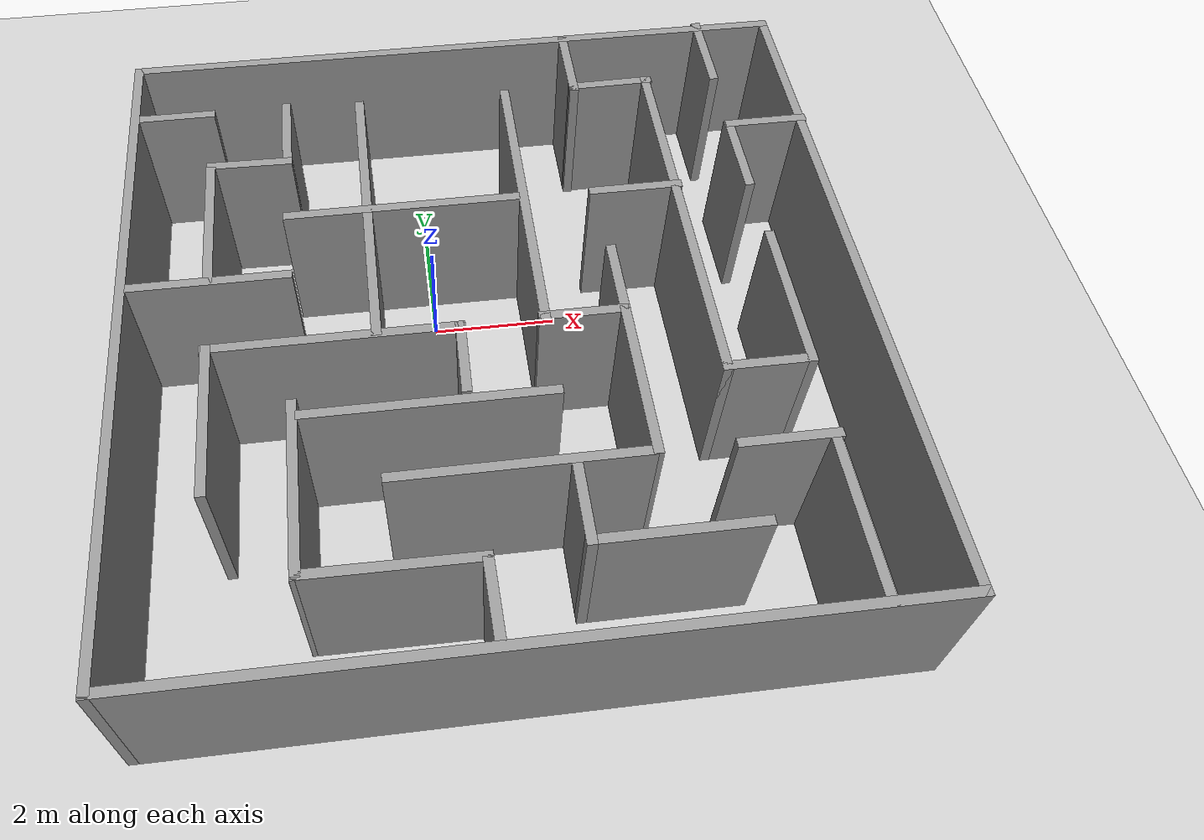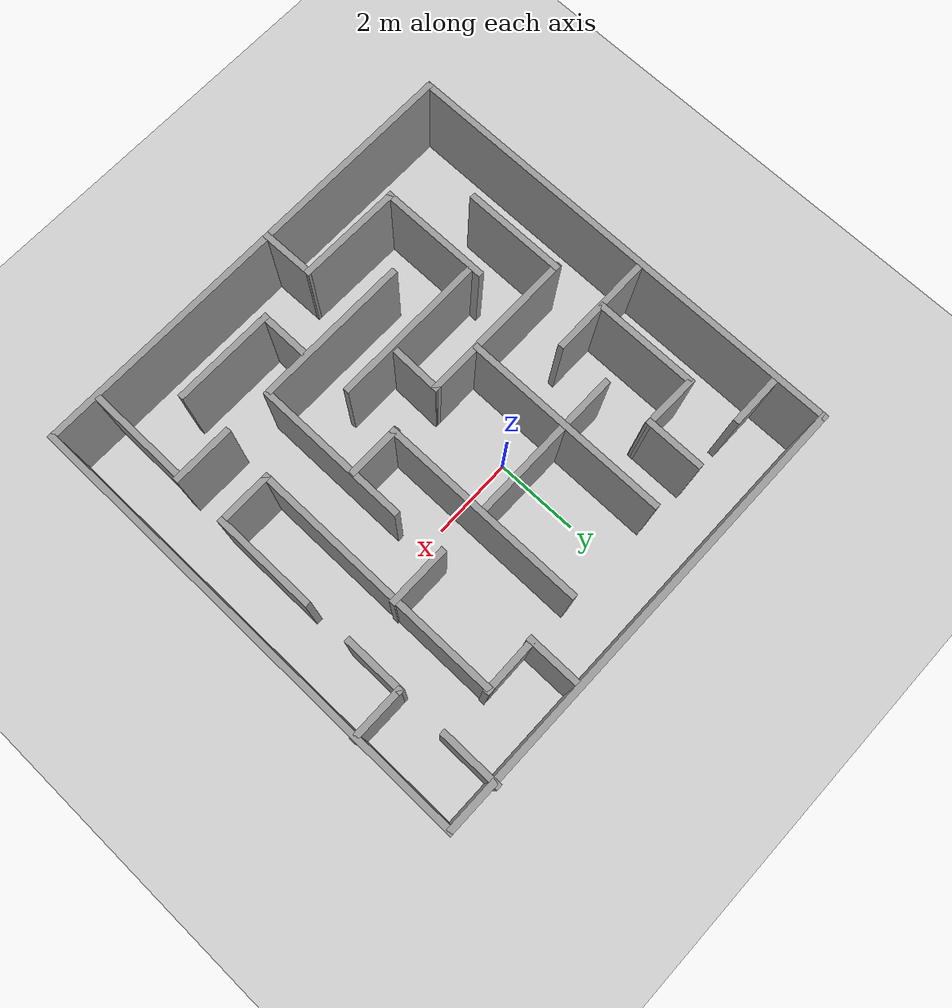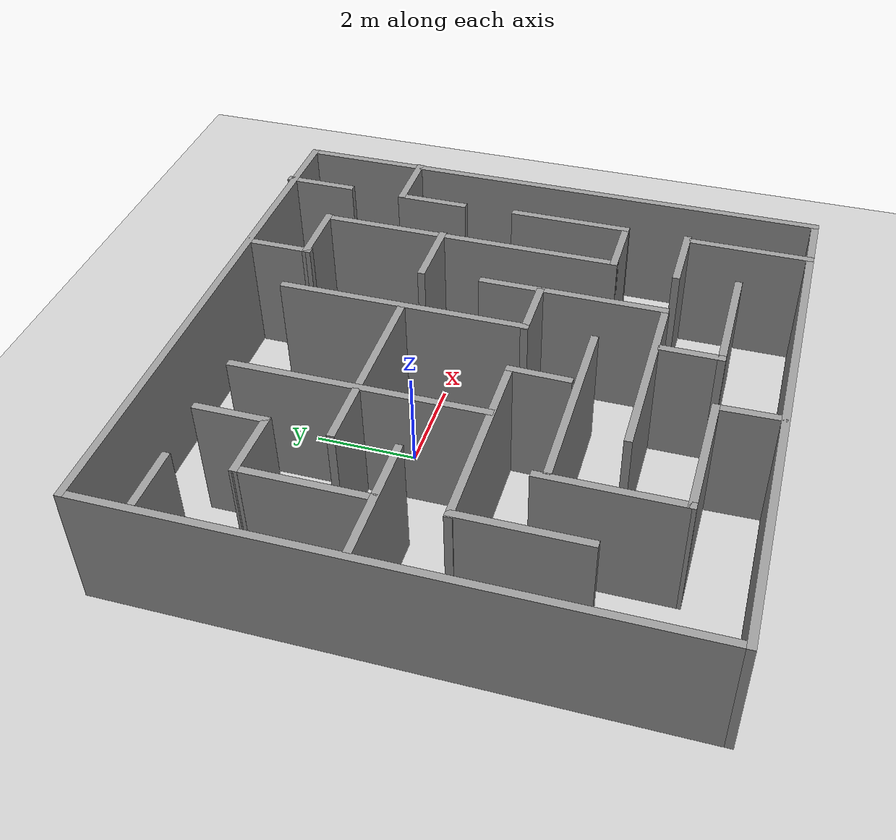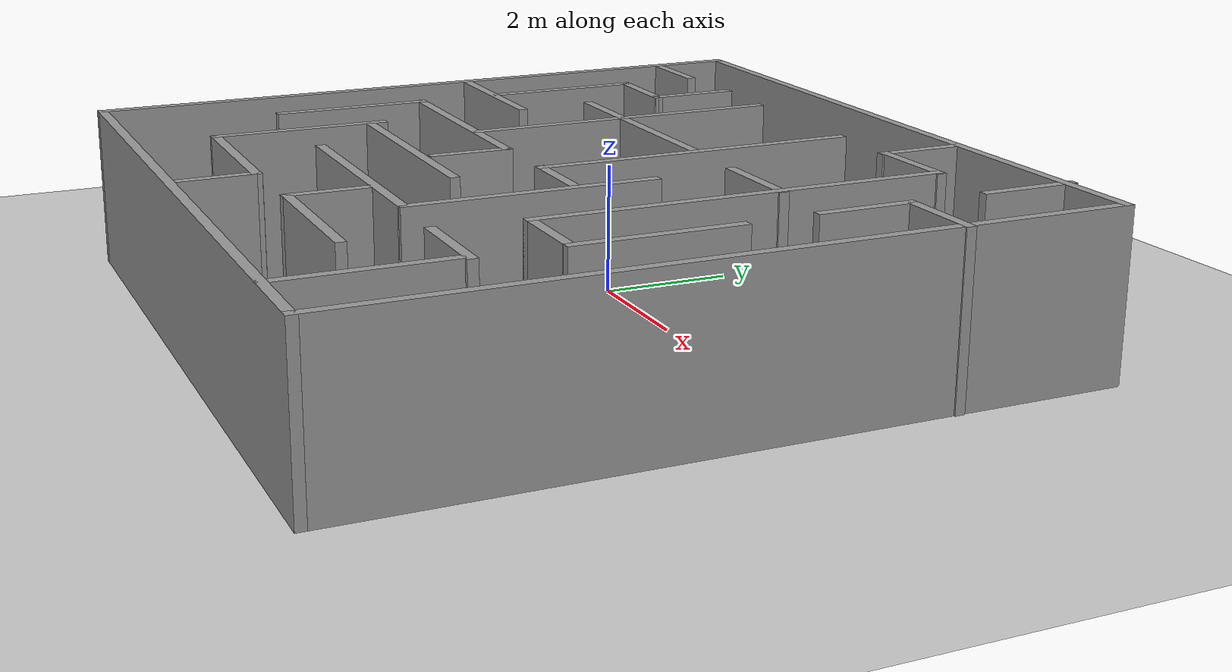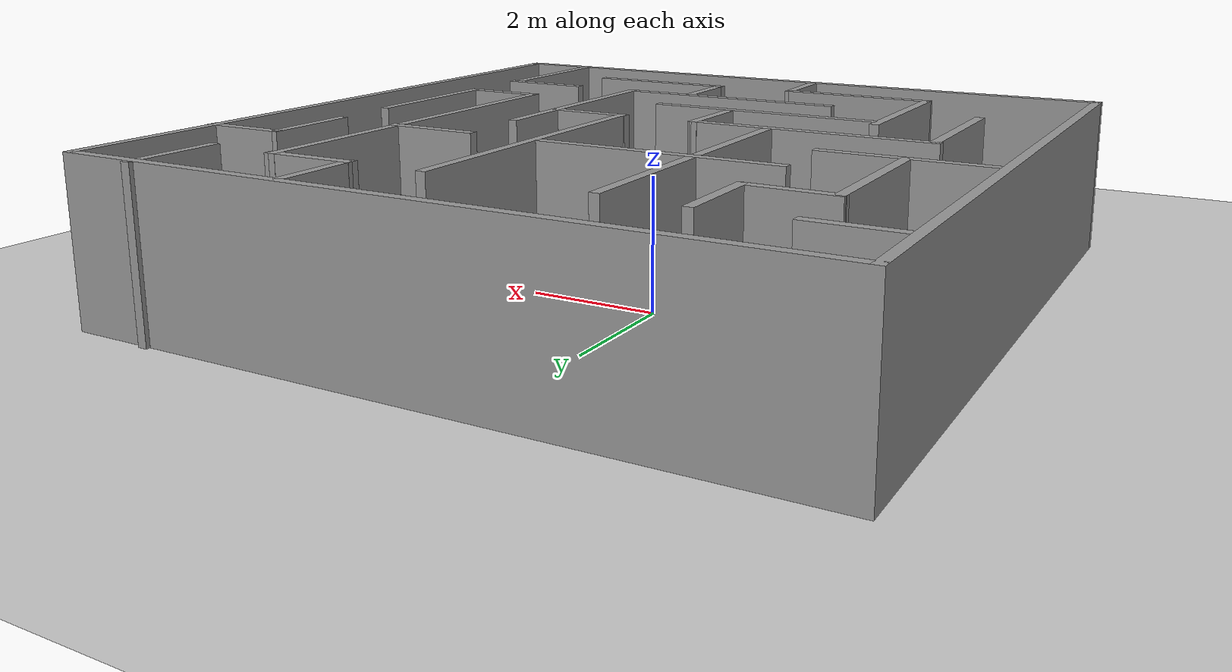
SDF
<sdf version="1.7">
 <world name="default">
  <model name="ground_plane">
   <static>1</static>
   <link name="link">
    <collision name="collision">
     <geometry><plane><normal>0 0 1</normal><size>100 100</size></plane></geometry>
     <surface><friction><ode><mu>100</mu><mu2>50</mu2></ode></friction></surface>
    </collision>
    <visual name="visual">
     <cast_shadows>0</cast_shadows>
     <geometry><plane><normal>0 0 1</normal><size>100 100</size></plane></geometry>
     <material>
      <script><uri>file://media/materials/scripts/gazebo.material</uri><name>Gazebo/Grey</name></script>
     </material>
    </visual>
   </link>
  </model>
  <light name="sun" type="directional">
   <pose>0 0 10 0 -0 0</pose>
   <diffuse>0.8 0.8 0.8 1</diffuse>
   <specular>0.2 0.2 0.2 1</specular>
   <attenuation>
    <range>1000</range>
    <constant>0.9</constant>
    <linear>0.01</linear>
    <quadratic>0.001</quadratic>
   </attenuation>
   <direction>-0.5 0.1 -0.9</direction>
   <spot><inner_angle>0</inner_angle><outer_angle>0</outer_angle><falloff>0</falloff></spot>
  </light>
  <scene><shadows>0</shadows><ambient>0.4 0.4 0.4 1</ambient><background>0.7 0.7 0.7 1</background></scene>
  <physics type="ode">
   <real_time_update_rate>1000</real_time_update_rate>
   <max_step_size>0.001</max_step_size>
   <real_time_factor>1</real_time_factor>
   <ode>
    <solver>
     <type>quick</type>
     <iters>150</iters>
     <precon_iters>0</precon_iters>
     <sor>1.4</sor>
     <use_dynamic_moi_rescaling>1</use_dynamic_moi_rescaling>
    </solver>
    <constraints>
     <cfm>1e-05</cfm>
     <erp>0.2</erp>
     <contact_max_correcting_vel>2000</contact_max_correcting_vel>
     <contact_surface_layer>0.01</contact_surface_layer>
    </constraints>
   </ode>
  </physics>
  <gravity>0 0 -9.8</gravity>
  <magnetic_field>6e-06 2.3e-05 -4.2e-05</magnetic_field>
  <atmosphere type="adiabatic"/>
  <audio><device>default</device></audio>
  <spherical_coordinates>
   <surface_model>EARTH_WGS84</surface_model>
   <latitude_deg>0</latitude_deg>
   <longitude_deg>0</longitude_deg>
   <elevation>0</elevation>
   <heading_deg>0</heading_deg>
  </spherical_coordinates>
  <model name="9by9_maze">
   <pose>0.849129 -1.13853 0 0 -0 0</pose>
   <link name="Wall_0">
    <collision name="Wall_0_Collision">
     <geometry><box><size>11.25 0.15 2.5</size></box></geometry>
     <pose>0 0 1.25 0 -0 0</pose>
    </collision>
    <visual name="Wall_0_Visual">
     <pose>0 0 1.25 0 -0 0</pose>
     <geometry><box><size>11.25 0.15 2.5</size></box></geometry>
     <material>
      <script><uri>file://media/materials/scripts/gazebo.material</uri><name>Gazebo/Grey</name></script>
      <ambient>1 1 1 1</ambient>
     </material>
     <meta><layer>0</layer></meta>
    </visual>
    <pose>-0.011794 5.51766 0 0 -0 0</pose>
   </link>
   <link name="Wall_1">
    <collision name="Wall_1_Collision">
     <geometry><box><size>11.25 0.15 2.5</size></box></geometry>
     <pose>0 0 1.25 0 -0 0</pose>
    </collision>
    <visual name="Wall_1_Visual">
     <pose>0 0 1.25 0 -0 0</pose>
     <geometry><box><size>11.25 0.15 2.5</size></box></geometry>
     <material>
      <script><uri>file://media/materials/scripts/gazebo.material</uri><name>Gazebo/Grey</name></script>
      <ambient>1 1 1 1</ambient>
     </material>
     <meta><layer>0</layer></meta>
    </visual>
    <pose>5.53821 -0.032344 0 0 -0 -1.5708</pose>
   </link>
   <link name="Wall_10">
    <collision name="Wall_10_Collision">
     <geometry><box><size>1.43004 0.15 2.5</size></box></geometry>
     <pose>0 0 1.25 0 -0 0</pose>
    </collision>
    <visual name="Wall_10_Visual">
     <pose>0 0 1.25 0 -0 0</pose>
     <geometry><box><size>1.43004 0.15 2.5</size></box></geometry>
     <material>
      <script><uri>file://media/materials/scripts/gazebo.material</uri><name>Gazebo/Grey</name></script>
      <ambient>1 1 1 1</ambient>
     </material>
     <meta><layer>0</layer></meta>
    </visual>
    <pose>-3.03551 3.68063 0 0 -0 -1.5708</pose>
   </link>
   <link name="Wall_13">
    <collision name="Wall_13_Collision">
     <geometry><box><size>1.38456 0.15 2.5</size></box></geometry>
     <pose>0 0 1.25 0 -0 0</pose>
    </collision>
    <visual name="Wall_13_Visual">
     <pose>0 0 1.25 0 -0 0</pose>
     <geometry><box><size>1.38456 0.15 2.5</size></box></geometry>
     <material>
      <script><uri>file://media/materials/scripts/gazebo.material</uri><name>Gazebo/Grey</name></script>
      <ambient>1 1 1 1</ambient>
     </material>
     <meta><layer>0</layer></meta>
    </visual>
    <pose>-3.65268 3.03468 0 0 -0 -0.018737</pose>
   </link>
   <link name="Wall_15">
    <collision name="Wall_15_Collision">
     <geometry><box><size>2.5 0.15 2.5</size></box></geometry>
     <pose>0 0 1.25 0 -0 0</pose>
    </collision>
    <visual name="Wall_15_Visual">
     <pose>0 0 1.25 0 -0 0</pose>
     <geometry><box><size>2.5 0.15 2.5</size></box></geometry>
     <material>
      <script><uri>file://media/materials/scripts/gazebo.material</uri><name>Gazebo/Grey</name></script>
      <ambient>1 1 1 1</ambient>
     </material>
     <meta><layer>0</layer></meta>
    </visual>
    <pose>-4.24538 0.613326 0 0 -0 0</pose>
   </link>
   <link name="Wall_17">
    <collision name="Wall_17_Collision">
     <geometry><box><size>2.5 0.15 2.5</size></box></geometry>
     <pose>0 0 1.25 0 -0 0</pose>
    </collision>
    <visual name="Wall_17_Visual">
     <pose>0 0 1.25 0 -0 0</pose>
     <geometry><box><size>2.5 0.15 2.5</size></box></geometry>
     <material>
      <script><uri>file://media/materials/scripts/gazebo.material</uri><name>Gazebo/Grey</name></script>
      <ambient>1 1 1 1</ambient>
     </material>
     <meta><layer>0</layer></meta>
    </visual>
    <pose>-4.26604 -1.83212 0 0 -0 1.5708</pose>
   </link>
   <link name="Wall_18">
    <collision name="Wall_18_Collision">
     <geometry><box><size>3.84252 0.15 2.5</size></box></geometry>
     <pose>0 0 1.25 0 -0 0</pose>
    </collision>
    <visual name="Wall_18_Visual">
     <pose>0 0 1.25 0 -0 0</pose>
     <geometry><box><size>3.84252 0.15 2.5</size></box></geometry>
     <material>
      <script><uri>file://media/materials/scripts/gazebo.material</uri><name>Gazebo/Grey</name></script>
      <ambient>1 1 1 1</ambient>
     </material>
     <meta><layer>0</layer></meta>
    </visual>
    <pose>-2.44291 -0.657117 0 0 -0 0</pose>
   </link>
   <link name="Wall_19">
    <collision name="Wall_19_Collision">
     <geometry><box><size>1.25097 0.15 2.5</size></box></geometry>
     <pose>0 0 1.25 0 -0 0</pose>
    </collision>
    <visual name="Wall_19_Visual">
     <pose>0 0 1.25 0 -0 0</pose>
     <geometry><box><size>1.25097 0.15 2.5</size></box></geometry>
     <material>
      <script><uri>file://media/materials/scripts/gazebo.material</uri><name>Gazebo/Grey</name></script>
      <ambient>1 1 1 1</ambient>
     </material>
     <meta><layer>0</layer></meta>
    </visual>
    <pose>-0.585081 -1.20712 0 0 -0 -1.59182</pose>
   </link>
   <link name="Wall_2">
    <collision name="Wall_2_Collision">
     <geometry><box><size>11.25 0.15 2.5</size></box></geometry>
     <pose>0 0 1.25 0 -0 0</pose>
    </collision>
    <visual name="Wall_2_Visual">
     <pose>0 0 1.25 0 -0 0</pose>
     <geometry><box><size>11.25 0.15 2.5</size></box></geometry>
     <material>
      <script><uri>file://media/materials/scripts/gazebo.material</uri><name>Gazebo/Grey</name></script>
      <ambient>1 1 1 1</ambient>
     </material>
     <meta><layer>0</layer></meta>
    </visual>
    <pose>-0.011794 -5.58234 0 0 -0 3.14159</pose>
   </link>
   <link name="Wall_22">
    <collision name="Wall_22_Collision">
     <geometry><box><size>5 0.15 2.5</size></box></geometry>
     <pose>0 0 1.25 0 -0 0</pose>
    </collision>
    <visual name="Wall_22_Visual">
     <pose>0 0 1.25 0 -0 0</pose>
     <geometry><box><size>5 0.15 2.5</size></box></geometry>
     <material>
      <script><uri>file://media/materials/scripts/gazebo.material</uri><name>Gazebo/Grey</name></script>
      <ambient>1 1 1 1</ambient>
     </material>
     <meta><layer>0</layer></meta>
    </visual>
    <pose>-1.80032 1.80086 0 0 -0 1.5708</pose>
   </link>
   <link name="Wall_24">
    <collision name="Wall_24_Collision">
     <geometry><box><size>3.75 0.15 2.5</size></box></geometry>
     <pose>0 0 1.25 0 -0 0</pose>
    </collision>
    <visual name="Wall_24_Visual">
     <pose>0 0 1.25 0 -0 0</pose>
     <geometry><box><size>3.75 0.15 2.5</size></box></geometry>
     <material>
      <script><uri>file://media/materials/scripts/gazebo.material</uri><name>Gazebo/Grey</name></script>
      <ambient>1 1 1 1</ambient>
     </material>
     <meta><layer>0</layer></meta>
    </visual>
    <pose>-1.24937 1.80457 0 0 -0 0</pose>
   </link>
   <link name="Wall_26">
    <collision name="Wall_26_Collision">
     <geometry><box><size>5 0.15 2.5</size></box></geometry>
     <pose>0 0 1.25 0 -0 0</pose>
    </collision>
    <visual name="Wall_26_Visual">
     <pose>0 0 1.25 0 -0 0</pose>
     <geometry><box><size>5 0.15 2.5</size></box></geometry>
     <material>
      <script><uri>file://media/materials/scripts/gazebo.material</uri><name>Gazebo/Grey</name></script>
      <ambient>1 1 1 1</ambient>
     </material>
     <meta><layer>0</layer></meta>
    </visual>
    <pose>0.684928 1.80086 0 0 -0 -1.5708</pose>
   </link>
   <link name="Wall_29">
    <collision name="Wall_29_Collision">
     <geometry><box><size>1.34252 0.15 2.5</size></box></geometry>
     <pose>0 0 1.25 0 -0 0</pose>
    </collision>
    <visual name="Wall_29_Visual">
     <pose>0 0 1.25 0 -0 0</pose>
     <geometry><box><size>1.34252 0.15 2.5</size></box></geometry>
     <material>
      <script><uri>file://media/materials/scripts/gazebo.material</uri><name>Gazebo/Grey</name></script>
      <ambient>1 1 1 1</ambient>
     </material>
     <meta><layer>0</layer></meta>
    </visual>
    <pose>1.25806 -0.624143 0 0 -0 3.14159</pose>
   </link>
   <link name="Wall_3">
    <collision name="Wall_3_Collision">
     <geometry><box><size>11.25 0.15 2.5</size></box></geometry>
     <pose>0 0 1.25 0 -0 0</pose>
    </collision>
    <visual name="Wall_3_Visual">
     <pose>0 0 1.25 0 -0 0</pose>
     <geometry><box><size>11.25 0.15 2.5</size></box></geometry>
     <material>
      <script><uri>file://media/materials/scripts/gazebo.material</uri><name>Gazebo/Grey</name></script>
      <ambient>1 1 1 1</ambient>
     </material>
     <meta><layer>0</layer></meta>
    </visual>
    <pose>-5.56179 -0.032344 0 0 -0 1.5708</pose>
   </link>
   <link name="Wall_31">
    <collision name="Wall_31_Collision">
     <geometry><box><size>3.75 0.15 2.5</size></box></geometry>
     <pose>0 0 1.25 0 -0 0</pose>
    </collision>
    <visual name="Wall_31_Visual">
     <pose>0 0 1.25 0 -0 0</pose>
     <geometry><box><size>3.75 0.15 2.5</size></box></geometry>
     <material>
      <script><uri>file://media/materials/scripts/gazebo.material</uri><name>Gazebo/Grey</name></script>
      <ambient>1 1 1 1</ambient>
     </material>
     <meta><layer>0</layer></meta>
    </visual>
    <pose>1.87745 -1.26318 0 0 -0 -1.5708</pose>
   </link>
   <link name="Wall_33">
    <collision name="Wall_33_Collision">
     <geometry><box><size>3.75 0.15 2.5</size></box></geometry>
     <pose>0 0 1.25 0 -0 0</pose>
    </collision>
    <visual name="Wall_33_Visual">
     <pose>0 0 1.25 0 -0 0</pose>
     <geometry><box><size>3.75 0.15 2.5</size></box></geometry>
     <material>
      <script><uri>file://media/materials/scripts/gazebo.material</uri><name>Gazebo/Grey</name></script>
      <ambient>1 1 1 1</ambient>
     </material>
     <meta><layer>0</layer></meta>
    </visual>
    <pose>-0.000316 -3.07599 0 0 -0 0</pose>
   </link>
   <link name="Wall_35">
    <collision name="Wall_35_Collision">
     <geometry><box><size>2.5 0.15 2.5</size></box></geometry>
     <pose>0 0 1.25 0 -0 0</pose>
    </collision>
    <visual name="Wall_35_Visual">
     <pose>0 0 1.25 0 -0 0</pose>
     <geometry><box><size>2.5 0.15 2.5</size></box></geometry>
     <material>
      <script><uri>file://media/materials/scripts/gazebo.material</uri><name>Gazebo/Grey</name></script>
      <ambient>1 1 1 1</ambient>
     </material>
     <meta><layer>0</layer></meta>
    </visual>
    <pose>1.92837 -4.30191 0 0 -0 3.14159</pose>
   </link>
   <link name="Wall_37">
    <collision name="Wall_37_Collision">
     <geometry><box><size>1.25 0.15 2.5</size></box></geometry>
     <pose>0 0 1.25 0 -0 0</pose>
    </collision>
    <visual name="Wall_37_Visual">
     <pose>0 0 1.25 0 -0 0</pose>
     <geometry><box><size>1.25 0.15 2.5</size></box></geometry>
     <material>
      <script><uri>file://media/materials/scripts/gazebo.material</uri><name>Gazebo/Grey</name></script>
      <ambient>1 1 1 1</ambient>
     </material>
     <meta><layer>0</layer></meta>
    </visual>
    <pose>0.753372 -3.75191 0 0 -0 1.5708</pose>
   </link>
   <link name="Wall_41">
    <collision name="Wall_41_Collision">
     <geometry><box><size>3.75 0.15 2.5</size></box></geometry>
     <pose>0 0 1.25 0 -0 0</pose>
    </collision>
    <visual name="Wall_41_Visual">
     <pose>0 0 1.25 0 -0 0</pose>
     <geometry><box><size>3.75 0.15 2.5</size></box></geometry>
     <material>
      <script><uri>file://media/materials/scripts/gazebo.material</uri><name>Gazebo/Grey</name></script>
      <ambient>1 1 1 1</ambient>
     </material>
     <meta><layer>0</layer></meta>
    </visual>
    <pose>-1.12534 -1.94259 0 0 -0 3.14159</pose>
   </link>
   <link name="Wall_43">
    <collision name="Wall_43_Collision">
     <geometry><box><size>2.75 0.15 2.5</size></box></geometry>
     <pose>0 0 1.25 0 -0 0</pose>
    </collision>
    <visual name="Wall_43_Visual">
     <pose>0 0 1.25 0 -0 0</pose>
     <geometry><box><size>2.75 0.15 2.5</size></box></geometry>
     <material>
      <script><uri>file://media/materials/scripts/gazebo.material</uri><name>Gazebo/Grey</name></script>
      <ambient>1 1 1 1</ambient>
     </material>
     <meta><layer>0</layer></meta>
    </visual>
    <pose>-3.04937 -3.04817 0 0 -0 1.5708</pose>
   </link>
   <link name="Wall_45">
    <collision name="Wall_45_Collision">
     <geometry><box><size>2.60195 0.15 2.5</size></box></geometry>
     <pose>0 0 1.25 0 -0 0</pose>
    </collision>
    <visual name="Wall_45_Visual">
     <pose>0 0 1.25 0 -0 0</pose>
     <geometry><box><size>2.60195 0.15 2.5</size></box></geometry>
     <material>
      <script><uri>file://media/materials/scripts/gazebo.material</uri><name>Gazebo/Grey</name></script>
      <ambient>1 1 1 1</ambient>
     </material>
     <meta><layer>0</layer></meta>
    </visual>
    <pose>-1.82345 -4.35974 0 0 -0 3.13216</pose>
   </link>
   <link name="Wall_47">
    <collision name="Wall_47_Collision">
     <geometry><box><size>1.35301 0.15 2.5</size></box></geometry>
     <pose>0 0 1.25 0 -0 0</pose>
    </collision>
    <visual name="Wall_47_Visual">
     <pose>0 0 1.25 0 -0 0</pose>
     <geometry><box><size>1.35301 0.15 2.5</size></box></geometry>
     <material>
      <script><uri>file://media/materials/scripts/gazebo.material</uri><name>Gazebo/Grey</name></script>
      <ambient>1 1 1 1</ambient>
     </material>
     <meta><layer>0</layer></meta>
    </visual>
    <pose>-0.58596 -4.9727 0 0 -0 1.59003</pose>
   </link>
   <link name="Wall_49">
    <collision name="Wall_49_Collision">
     <geometry><box><size>2.5 0.15 2.5</size></box></geometry>
     <pose>0 0 1.25 0 -0 0</pose>
    </collision>
    <visual name="Wall_49_Visual">
     <pose>0 0 1.25 0 -0 0</pose>
     <geometry><box><size>2.5 0.15 2.5</size></box></geometry>
     <material>
      <script><uri>file://media/materials/scripts/gazebo.material</uri><name>Gazebo/Grey</name></script>
      <ambient>1 1 1 1</ambient>
     </material>
     <meta><layer>0</layer></meta>
    </visual>
    <pose>4.3293 -4.39909 0 0 -0 1.5708</pose>
   </link>
   <link name="Wall_5">
    <collision name="Wall_5_Collision">
     <geometry><box><size>1.25 0.15 2.5</size></box></geometry>
     <pose>0 0 1.25 0 -0 0</pose>
    </collision>
    <visual name="Wall_5_Visual">
     <pose>0 0 1.25 0 -0 0</pose>
     <geometry><box><size>1.25 0.15 2.5</size></box></geometry>
     <material>
      <script><uri>file://media/materials/scripts/gazebo.material</uri><name>Gazebo/Grey</name></script>
      <ambient>1 1 1 1</ambient>
     </material>
     <meta><layer>0</layer></meta>
    </visual>
    <pose>-4.86158 4.29405 0 0 -0 3.14159</pose>
   </link>
   <link name="Wall_51">
    <collision name="Wall_51_Collision">
     <geometry><box><size>1.5 0.15 2.5</size></box></geometry>
     <pose>0 0 1.25 0 -0 0</pose>
    </collision>
    <visual name="Wall_51_Visual">
     <pose>0 0 1.25 0 -0 0</pose>
     <geometry><box><size>1.5 0.15 2.5</size></box></geometry>
     <material>
      <script><uri>file://media/materials/scripts/gazebo.material</uri><name>Gazebo/Grey</name></script>
      <ambient>1 1 1 1</ambient>
     </material>
     <meta><layer>0</layer></meta>
    </visual>
    <pose>3.70898 -3.09912 0 0 -0 0</pose>
   </link>
   <link name="Wall_54">
    <collision name="Wall_54_Collision">
     <geometry><box><size>1.4096 0.15 2.5</size></box></geometry>
     <pose>0 0 1.25 0 -0 0</pose>
    </collision>
    <visual name="Wall_54_Visual">
     <pose>0 0 1.25 0 -0 0</pose>
     <geometry><box><size>1.4096 0.15 2.5</size></box></geometry>
     <material>
      <script><uri>file://media/materials/scripts/gazebo.material</uri><name>Gazebo/Grey</name></script>
      <ambient>1 1 1 1</ambient>
     </material>
     <meta><layer>0</layer></meta>
    </visual>
    <pose>1.88417 4.85997 0 0 -0 1.5708</pose>
   </link>
   <link name="Wall_56">
    <collision name="Wall_56_Collision">
     <geometry><box><size>1.43259 0.15 2.5</size></box></geometry>
     <pose>0 0 1.25 0 -0 0</pose>
    </collision>
    <visual name="Wall_56_Visual">
     <pose>0 0 1.25 0 -0 0</pose>
     <geometry><box><size>1.43259 0.15 2.5</size></box></geometry>
     <material>
      <script><uri>file://media/materials/scripts/gazebo.material</uri><name>Gazebo/Grey</name></script>
      <ambient>1 1 1 1</ambient>
     </material>
     <meta><layer>0</layer></meta>
    </visual>
    <pose>2.5254 4.26628 0 0 -0 -3.12676</pose>
   </link>
   <link name="Wall_58">
    <collision name="Wall_58_Collision">
     <geometry><box><size>6.25 0.15 2.5</size></box></geometry>
     <pose>0 0 1.25 0 -0 0</pose>
    </collision>
    <visual name="Wall_58_Visual">
     <pose>0 0 1.25 0 -0 0</pose>
     <geometry><box><size>6.25 0.15 2.5</size></box></geometry>
     <material>
      <script><uri>file://media/materials/scripts/gazebo.material</uri><name>Gazebo/Grey</name></script>
      <ambient>1 1 1 1</ambient>
     </material>
     <meta><layer>0</layer></meta>
    </visual>
    <pose>3.1362 1.22579 0 0 -0 -1.5708</pose>
   </link>
   <link name="Wall_60">
    <collision name="Wall_60_Collision">
     <geometry><box><size>1.5 0.15 2.5</size></box></geometry>
     <pose>0 0 1.25 0 -0 0</pose>
    </collision>
    <visual name="Wall_60_Visual">
     <pose>0 0 1.25 0 -0 0</pose>
     <geometry><box><size>1.5 0.15 2.5</size></box></geometry>
     <material>
      <script><uri>file://media/materials/scripts/gazebo.material</uri><name>Gazebo/Grey</name></script>
      <ambient>1 1 1 1</ambient>
     </material>
     <meta><layer>0</layer></meta>
    </visual>
    <pose>2.49522 1.77692 0 0 -0 0</pose>
   </link>
   <link name="Wall_62">
    <collision name="Wall_62_Collision">
     <geometry><box><size>1.25 0.15 2.5</size></box></geometry>
     <pose>0 0 1.25 0 -0 0</pose>
    </collision>
    <visual name="Wall_62_Visual">
     <pose>0 0 1.25 0 -0 0</pose>
     <geometry><box><size>1.25 0.15 2.5</size></box></geometry>
     <material>
      <script><uri>file://media/materials/scripts/gazebo.material</uri><name>Gazebo/Grey</name></script>
      <ambient>1 1 1 1</ambient>
     </material>
     <meta><layer>0</layer></meta>
    </visual>
    <pose>3.6862 -1.82421 0 0 -0 0</pose>
   </link>
   <link name="Wall_64">
    <collision name="Wall_64_Collision">
     <geometry><box><size>2.5 0.15 2.5</size></box></geometry>
     <pose>0 0 1.25 0 -0 0</pose>
    </collision>
    <visual name="Wall_64_Visual">
     <pose>0 0 1.25 0 -0 0</pose>
     <geometry><box><size>2.5 0.15 2.5</size></box></geometry>
     <material>
      <script><uri>file://media/materials/scripts/gazebo.material</uri><name>Gazebo/Grey</name></script>
      <ambient>1 1 1 1</ambient>
     </material>
     <meta><layer>0</layer></meta>
    </visual>
    <pose>4.37529 -0.645195 0 0 -0 -1.5708</pose>
   </link>
   <link name="Wall_66">
    <collision name="Wall_66_Collision">
     <geometry><box><size>1.5 0.15 2.5</size></box></geometry>
     <pose>0 0 1.25 0 -0 0</pose>
    </collision>
    <visual name="Wall_66_Visual">
     <pose>0 0 1.25 0 -0 0</pose>
     <geometry><box><size>1.5 0.15 2.5</size></box></geometry>
     <material>
      <script><uri>file://media/materials/scripts/gazebo.material</uri><name>Gazebo/Grey</name></script>
      <ambient>1 1 1 1</ambient>
     </material>
     <meta><layer>0</layer></meta>
    </visual>
    <pose>4.32967 2.36067 0 0 -0 1.5708</pose>
   </link>
   <link name="Wall_68">
    <collision name="Wall_68_Collision">
     <geometry><box><size>1.36671 0.15 2.5</size></box></geometry>
     <pose>0 0 1.25 0 -0 0</pose>
    </collision>
    <visual name="Wall_68_Visual">
     <pose>0 0 1.25 0 -0 0</pose>
     <geometry><box><size>1.36671 0.15 2.5</size></box></geometry>
     <material>
      <script><uri>file://media/materials/scripts/gazebo.material</uri><name>Gazebo/Grey</name></script>
      <ambient>1 1 1 1</ambient>
     </material>
     <meta><layer>0</layer></meta>
    </visual>
    <pose>4.95322 3.03746 0 0 -0 -3.13865</pose>
   </link>
   <link name="Wall_7">
    <collision name="Wall_7_Collision">
     <geometry><box><size>2.5 0.15 2.5</size></box></geometry>
     <pose>0 0 1.25 0 -0 0</pose>
    </collision>
    <visual name="Wall_7_Visual">
     <pose>0 0 1.25 0 -0 0</pose>
     <geometry><box><size>2.5 0.15 2.5</size></box></geometry>
     <material>
      <script><uri>file://media/materials/scripts/gazebo.material</uri><name>Gazebo/Grey</name></script>
      <ambient>1 1 1 1</ambient>
     </material>
     <meta><layer>0</layer></meta>
    </visual>
    <pose>-4.26985 1.82499 0 0 -0 1.5708</pose>
   </link>
   <link name="Wall_70">
    <collision name="Wall_70_Collision">
     <geometry><box><size>1.5 0.15 2.5</size></box></geometry>
     <pose>0 0 1.25 0 -0 0</pose>
    </collision>
    <visual name="Wall_70_Visual">
     <pose>0 0 1.25 0 -0 0</pose>
     <geometry><box><size>1.5 0.15 2.5</size></box></geometry>
     <material>
      <script><uri>file://media/materials/scripts/gazebo.material</uri><name>Gazebo/Grey</name></script>
      <ambient>1 1 1 1</ambient>
     </material>
     <meta><layer>0</layer></meta>
    </visual>
    <pose>4.33321 4.90734 0 0 -0 1.5708</pose>
   </link>
   <static>1</static>
  </model>
 </world>
</sdf>
